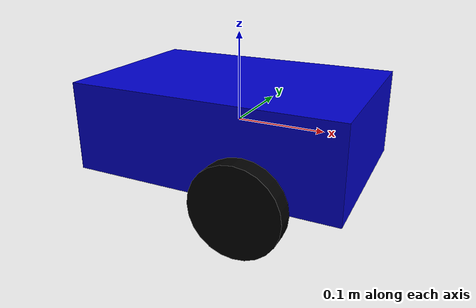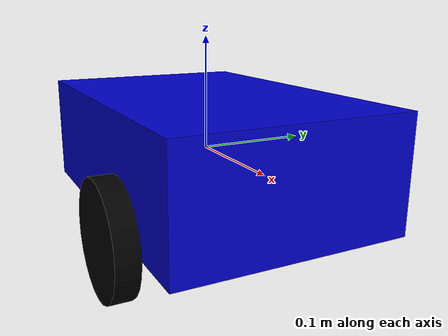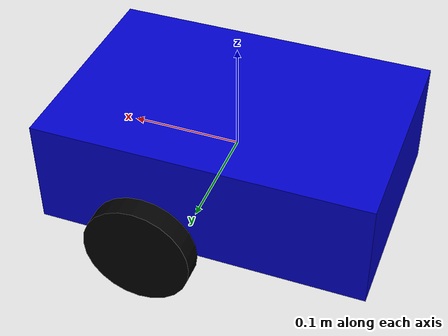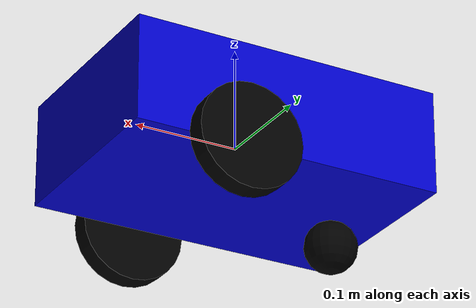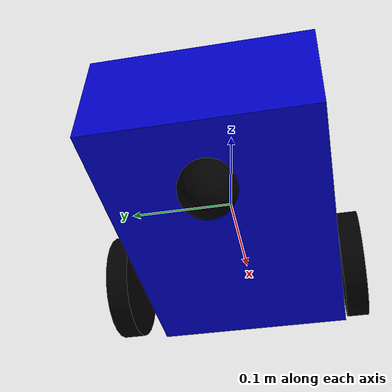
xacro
<?xml version="1.0"?>
<robot name="unicycle_ugv" xmlns:xacro="http://ros.org/wiki/xacro">

  <xacro:arg name="robot_name" default="ugv"/>

  <xacro:property name="chassis_length" value="0.3"/>
  <xacro:property name="chassis_width" value="0.2"/>
  <xacro:property name="chassis_height" value="0.1"/>
  <xacro:property name="wheel_radius" value="0.05"/>
  <xacro:property name="wheel_width" value="0.02"/>

  <xacro:macro name="box_inertia" params="m w h d">
    <inertial>
      <mass value="${m}"/>
      <inertia ixx="${(m/12) * (h*h + d*d)}" ixy="0.0" ixz="0.0"
               iyy="${(m/12) * (w*w + d*d)}" iyz="0.0"
               izz="${(m/12) * (w*w + h*h)}"/>
    </inertial>
  </xacro:macro>

  <xacro:macro name="cylinder_inertia" params="m r h">
    <inertial>
      <mass value="${m}"/>
      <inertia ixx="${(m/12) * (3*r*r + h*h)}" ixy="0" ixz="0"
               iyy="${(m/12) * (3*r*r + h*h)}" iyz="0"
               izz="${(m/2) * (r*r)}"/>
    </inertial>
  </xacro:macro>

  <link name="$(arg robot_name)/base_link">
    <visual>
      <geometry>
        <box size="${chassis_length} ${chassis_width} ${chassis_height}"/>
      </geometry>
      <material name="blue">
        <color rgba="0 0 0.8 1"/>
      </material>
    </visual>
    <collision>
      <geometry>
        <box size="${chassis_length} ${chassis_width} ${chassis_height}"/>
      </geometry>
    </collision>
    <xacro:box_inertia m="1.0" w="${chassis_width}" h="${chassis_height}" d="${chassis_length}"/>
  </link>

  <link name="$(arg robot_name)/left_wheel">
    <visual>
      <geometry>
        <cylinder radius="${wheel_radius}" length="${wheel_width}"/>
      </geometry>
      <material name="black">
        <color rgba="0 0 0 1"/>
      </material>
    </visual>
    <collision>
      <geometry>
        <cylinder radius="${wheel_radius}" length="${wheel_width}"/>
      </geometry>
    </collision>
    <xacro:cylinder_inertia m="0.2" r="${wheel_radius}" h="${wheel_width}"/>
  </link>

  <joint name="left_wheel_joint" type="continuous">
    <parent link="$(arg robot_name)/base_link"/>
    <child link="$(arg robot_name)/left_wheel"/>
    <origin xyz="0.05 ${chassis_width/2 + wheel_width/2} -0.05" rpy="-1.5708 0 0"/>
    <axis xyz="0 0 1"/>
  </joint>

  <link name="$(arg robot_name)/right_wheel">
    <visual>
      <geometry>
        <cylinder radius="${wheel_radius}" length="${wheel_width}"/>
      </geometry>
      <material name="black"/>
    </visual>
    <collision>
      <geometry>
        <cylinder radius="${wheel_radius}" length="${wheel_width}"/>
      </geometry>
    </collision>
    <xacro:cylinder_inertia m="0.2" r="${wheel_radius}" h="${wheel_width}"/>
  </link>

  <joint name="right_wheel_joint" type="continuous">
    <parent link="$(arg robot_name)/base_link"/>
    <child link="$(arg robot_name)/right_wheel"/>
    <origin xyz="0.05 -${chassis_width/2 + wheel_width/2} -0.05" rpy="-1.5708 0 0"/>
    <axis xyz="0 0 1"/>
  </joint>

  <link name="$(arg robot_name)/caster_wheel">
    <visual>
      <geometry>
        <sphere radius="${wheel_radius / 2}"/>
      </geometry>
      <material name="black"/>
    </visual>
    <collision>
      <geometry>
        <sphere radius="${wheel_radius / 2}"/>
      </geometry>
    </collision>
    <inertial>
      <mass value="0.1"/>
      <inertia ixx="0.0001" ixy="0.0" ixz="0.0" iyy="0.0001" iyz="0.0" izz="0.0001"/>
    </inertial>
  </link>

  <joint name="caster_joint" type="fixed">
    <parent link="$(arg robot_name)/base_link"/>
    <child link="$(arg robot_name)/caster_wheel"/>
    <origin xyz="-0.1 0 -0.075" rpy="0 0 0"/>
  </joint>

  <gazebo reference="$(arg robot_name)/caster_wheel">
    <mu1>0.0</mu1>
    <mu2>0.0</mu2>
  </gazebo>

  <gazebo>
    <plugin name="diff_drive_controller" filename="libgazebo_ros_diff_drive.so">

      <ros>
        <namespace>/$(arg robot_name)</namespace>
      </ros>

      <left_joint>left_wheel_joint</left_joint>
      <right_joint>right_wheel_joint</right_joint>
      <wheel_separation>${chassis_width + wheel_width}</wheel_separation>
      <wheel_diameter>${wheel_radius * 2}</wheel_diameter>

      <publish_odom>true</publish_odom>
      <publish_odom_tf>true</publish_odom_tf>
      <publish_wheel_tf>true</publish_wheel_tf>

      <odometry_frame>$(arg robot_name)/odom</odometry_frame>
      <robot_base_frame>$(arg robot_name)/base_link</robot_base_frame>

    </plugin>
  </gazebo>

</robot>
